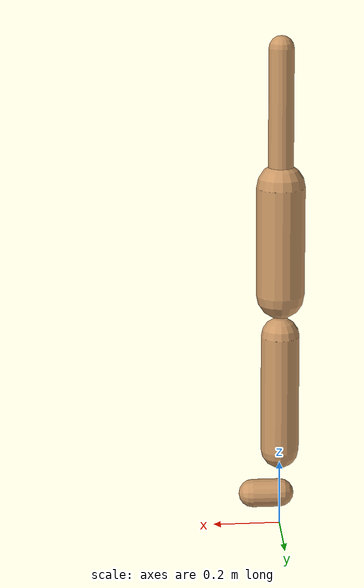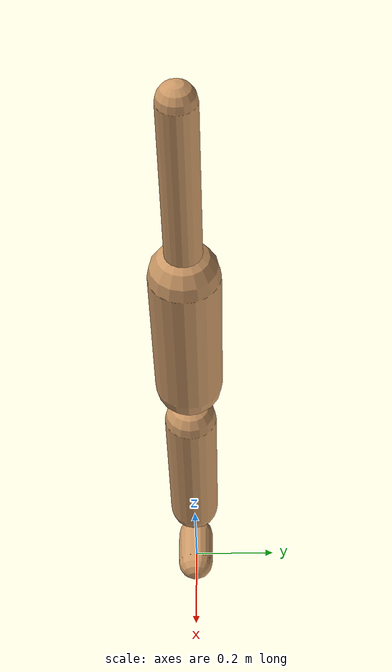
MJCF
<mujoco model="walker2d">
  <compiler angle="degree" coordinate="global" inertiafromgeom="true" />
  <default>
    <joint armature="0.01" damping=".1" limited="true" />
    <geom conaffinity="0" condim="3" contype="1" density="1000" friction="0.8 .1 .1" rgba="0.8 0.6 .4 1" />
  </default>
  <option integrator="RK4" timestep="0.002" />
  <worldbody>

    <body name="torso" pos="0 0 -0.26996055463475405">
      <joint armature="0" axis="1 0 0" damping="0" limited="false" name="ignorex" pos="0 0 0" stiffness="0" type="slide" />
      <joint armature="0" axis="0 0 1" damping="0" limited="false" name="ignorez" pos="0 0 0" ref="1.25" stiffness="0" type="slide" />
      <joint armature="0" axis="0 1 0" damping="0" limited="false" name="ignorey" pos="0 0 0" stiffness="0" type="hinge" />
      <geom fromto="0 0 1.45 0 0 1.05" name="torso_geom" size="0.03659910634810638" type="capsule" />
      <body name="thigh">
        <joint axis="0 -1 0" name="thigh_joint" pos="0 0 1.05" range="-150 0" type="hinge" />
        <geom fromto="0.0 0.0 1.05 0.0 0.0 0.7278760521954097" name="thigh_geom" size="0.07109461309664743" type="capsule" />
        <body name="leg" pos="0.0 0.0 0.12787605219540976">
          <joint axis="0 -1 0" name="leg_joint" pos="0 0 0.6" range="-150 0" type="hinge" />
          <geom fromto="0.0 0.0 0.6 0.0 0.0 0.24208450243934423" name="leg_geom" size="0.056875690477317935" type="capsule" />
          <body name="foot" pos="0.0 0.0 0.14208450243934423">
            <joint axis="0 -1 0" name="foot_joint" pos="0 0 0.1" range="-45 45" type="hinge" />
            <geom fromto="0.0 0.0 0.1 0.08128874319394629 0.0 0.1" name="foot_geom" size="0.042388945762182245" type="capsule" />
          </body>
        </body>
      </body>

      <body name="thigh_left">
        <joint axis="0 -1 0" name="thigh_left_joint" pos="0 0 1.05" range="-150 0" type="hinge" />
        <geom fromto="0.0 0.0 1.05 0.0 0.0 0.7278760521954097" name="thigh_left_geom" rgba=".7 .3 .6 1" size="0.07109461309664743" type="capsule" />
        <body name="leg_left" pos="0.0 0.0 0.12787605219540976">
          <joint axis="0 -1 0" name="leg_left_joint" pos="0 0 0.6" range="-150 0" type="hinge" />
          <geom fromto="0.0 0.0 0.6 0.0 0.0 0.24208450243934423" name="leg_left_geom" rgba=".7 .3 .6 1" size="0.056875690477317935" type="capsule" />
          <body name="foot_left" pos="0.0 0.0 0.14208450243934423">
            <joint axis="0 -1 0" name="foot_left_joint" pos="0 0 0.1" range="-45 45" type="hinge" />
            <geom fromto="0.0 0.0 0.1 0.08128874319394629 0.0 0.1" name="foot_left_geom" rgba=".7 .3 .6 1" size="0.042388945762182245" type="capsule" />
          </body>
        </body>
      </body>
    </body>
  </worldbody>
  <actuator>

    <motor ctrllimited="true" ctrlrange="-1.0 1.0" gear="100" joint="thigh_joint" />
    <motor ctrllimited="true" ctrlrange="-1.0 1.0" gear="100" joint="leg_joint" />
    <motor ctrllimited="true" ctrlrange="-1.0 1.0" gear="100" joint="foot_joint" />
    <motor ctrllimited="true" ctrlrange="-1.0 1.0" gear="100" joint="thigh_left_joint" />
    <motor ctrllimited="true" ctrlrange="-1.0 1.0" gear="100" joint="leg_left_joint" />
    <motor ctrllimited="true" ctrlrange="-1.0 1.0" gear="100" joint="foot_left_joint" />

  </actuator>
</mujoco>
